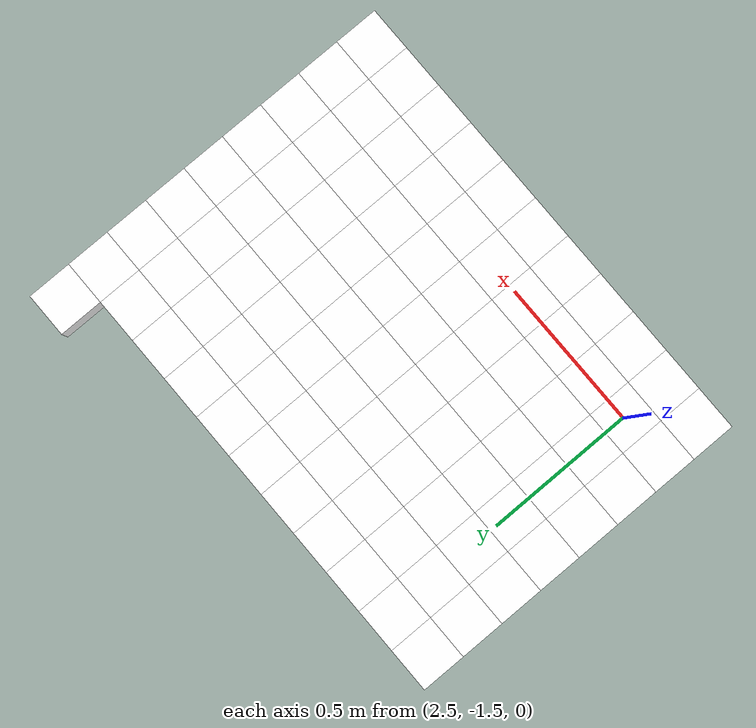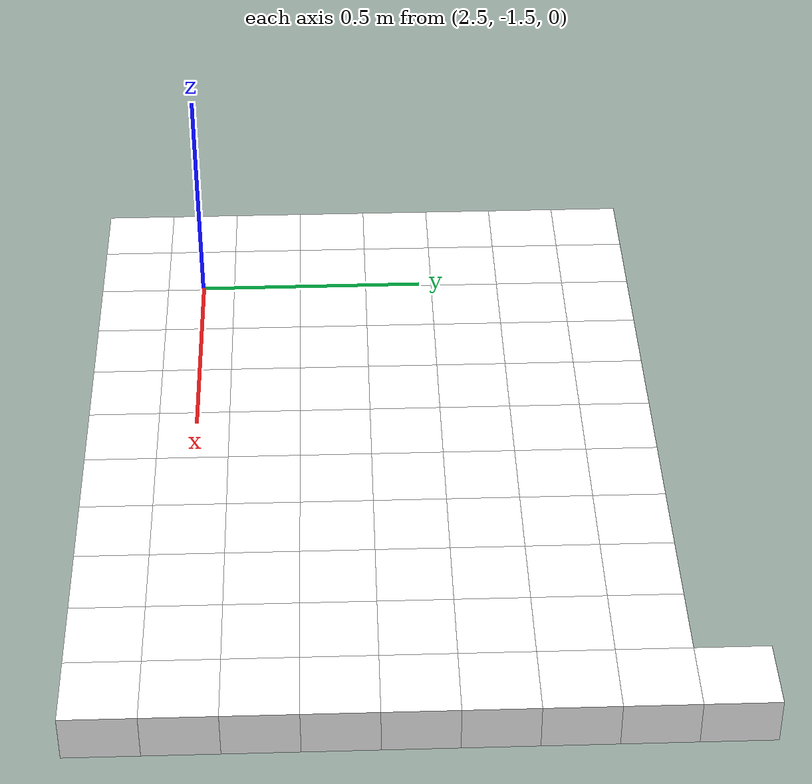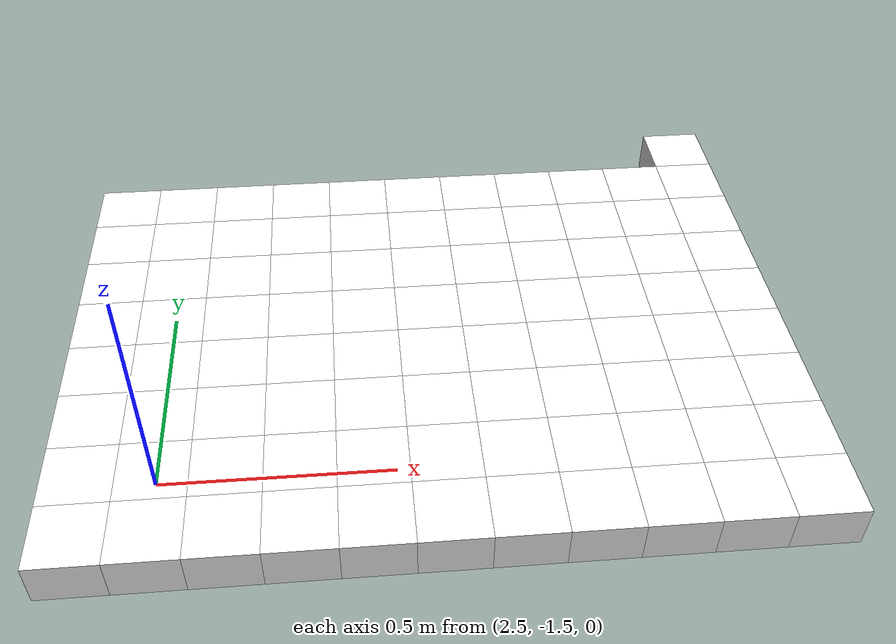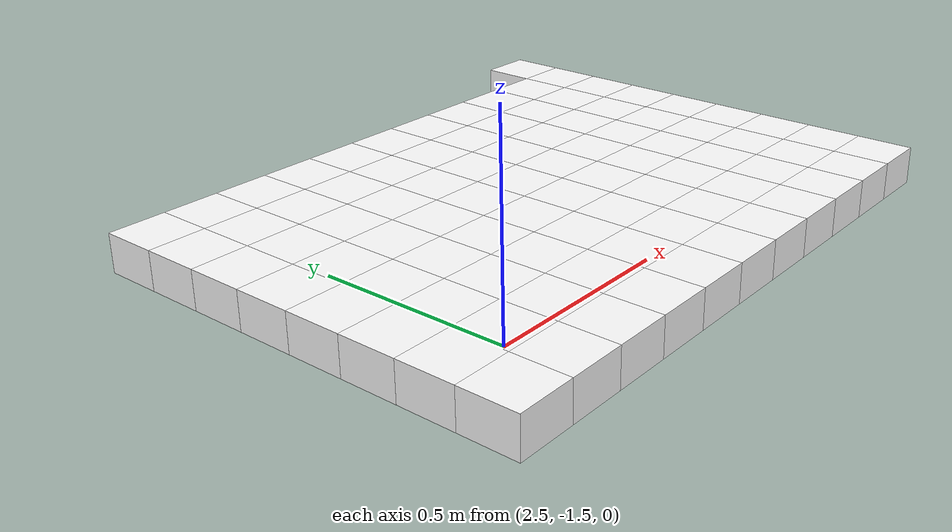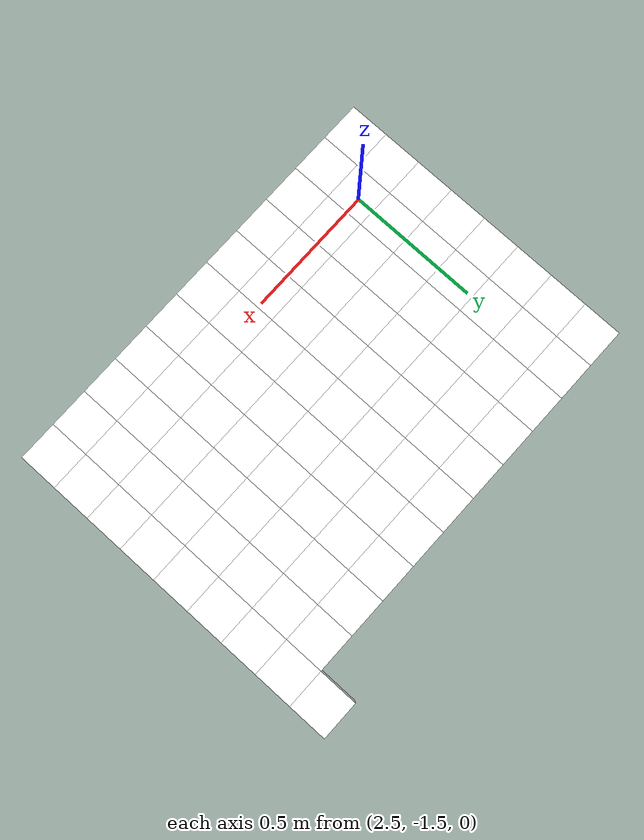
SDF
<sdf version="1.7">
 <world name="default">
  <include><uri>model://sun</uri></include>
  <model name="static_environment">
   <static>true</static>
   <link name="region_588">
    <pose>2.3498932063179314 -0.6003870599223852 0.0 0.0 0.0 4.7123</pose>
    <collision name="region_588_collision">
     <geometry><box><size>0.15 0.15 0.1</size></box></geometry>
     <surface><friction><ode><mu>1.0</mu><mu2>1.0</mu2></ode></friction></surface>
    </collision>
    <visual name="region_588_visual">
     <geometry><box><size>0.15 0.15 0.1</size></box></geometry>
     <material><ambient>1.0 1.0 1.0 1.0</ambient><diffuse>1.0 1.0 1.0 1.0</diffuse></material>
    </visual>
   </link>
   <link name="region_589">
    <pose>2.3498798592602457 -0.7503870593285719 0.0 0.0 0.0 4.7123</pose>
    <collision name="region_589_collision">
     <geometry><box><size>0.15 0.15 0.1</size></box></geometry>
     <surface><friction><ode><mu>1.0</mu><mu2>1.0</mu2></ode></friction></surface>
    </collision>
    <visual name="region_589_visual">
     <geometry><box><size>0.15 0.15 0.1</size></box></geometry>
     <material><ambient>1.0 1.0 1.0 1.0</ambient><diffuse>1.0 1.0 1.0 1.0</diffuse></material>
    </visual>
   </link>
   <link name="region_590">
    <pose>2.349866512202559 -0.9003870587347588 0.0 0.0 0.0 4.7123</pose>
    <collision name="region_590_collision">
     <geometry><box><size>0.15 0.15 0.1</size></box></geometry>
     <surface><friction><ode><mu>1.0</mu><mu2>1.0</mu2></ode></friction></surface>
    </collision>
    <visual name="region_590_visual">
     <geometry><box><size>0.15 0.15 0.1</size></box></geometry>
     <material><ambient>1.0 1.0 1.0 1.0</ambient><diffuse>1.0 1.0 1.0 1.0</diffuse></material>
    </visual>
   </link>
   <link name="region_591">
    <pose>2.3498531651448733 -1.0503870581409456 0.0 0.0 0.0 4.7123</pose>
    <collision name="region_591_collision">
     <geometry><box><size>0.15 0.15 0.1</size></box></geometry>
     <surface><friction><ode><mu>1.0</mu><mu2>1.0</mu2></ode></friction></surface>
    </collision>
    <visual name="region_591_visual">
     <geometry><box><size>0.15 0.15 0.1</size></box></geometry>
     <material><ambient>1.0 1.0 1.0 1.0</ambient><diffuse>1.0 1.0 1.0 1.0</diffuse></material>
    </visual>
   </link>
   <link name="region_592">
    <pose>2.3498398180871876 -1.200387057547132 0.0 0.0 0.0 4.7123</pose>
    <collision name="region_592_collision">
     <geometry><box><size>0.15 0.15 0.1</size></box></geometry>
     <surface><friction><ode><mu>1.0</mu><mu2>1.0</mu2></ode></friction></surface>
    </collision>
    <visual name="region_592_visual">
     <geometry><box><size>0.15 0.15 0.1</size></box></geometry>
     <material><ambient>1.0 1.0 1.0 1.0</ambient><diffuse>1.0 1.0 1.0 1.0</diffuse></material>
    </visual>
   </link>
   <link name="region_593">
    <pose>2.349826471029502 -1.350387056953319 0.0 0.0 0.0 4.7123</pose>
    <collision name="region_593_collision">
     <geometry><box><size>0.15 0.15 0.1</size></box></geometry>
     <surface><friction><ode><mu>1.0</mu><mu2>1.0</mu2></ode></friction></surface>
    </collision>
    <visual name="region_593_visual">
     <geometry><box><size>0.15 0.15 0.1</size></box></geometry>
     <material><ambient>1.0 1.0 1.0 1.0</ambient><diffuse>1.0 1.0 1.0 1.0</diffuse></material>
    </visual>
   </link>
   <link name="region_594">
    <pose>2.349813123971816 -1.5003870563595059 0.0 0.0 0.0 4.7123</pose>
    <collision name="region_594_collision">
     <geometry><box><size>0.15 0.15 0.1</size></box></geometry>
     <surface><friction><ode><mu>1.0</mu><mu2>1.0</mu2></ode></friction></surface>
    </collision>
    <visual name="region_594_visual">
     <geometry><box><size>0.15 0.15 0.1</size></box></geometry>
     <material><ambient>1.0 1.0 1.0 1.0</ambient><diffuse>1.0 1.0 1.0 1.0</diffuse></material>
    </visual>
   </link>
   <link name="region_595">
    <pose>2.3497997769141303 -1.6503870557656923 0.0 0.0 0.0 4.7123</pose>
    <collision name="region_595_collision">
     <geometry><box><size>0.15 0.15 0.1</size></box></geometry>
     <surface><friction><ode><mu>1.0</mu><mu2>1.0</mu2></ode></friction></surface>
    </collision>
    <visual name="region_595_visual">
     <geometry><box><size>0.15 0.15 0.1</size></box></geometry>
     <material><ambient>1.0 1.0 1.0 1.0</ambient><diffuse>1.0 1.0 1.0 1.0</diffuse></material>
    </visual>
   </link>
   <link name="region_608">
    <pose>2.499893205724118 -0.6004004069800709 0.0 0.0 0.0 4.7123</pose>
    <collision name="region_608_collision">
     <geometry><box><size>0.15 0.15 0.1</size></box></geometry>
     <surface><friction><ode><mu>1.0</mu><mu2>1.0</mu2></ode></friction></surface>
    </collision>
    <visual name="region_608_visual">
     <geometry><box><size>0.15 0.15 0.1</size></box></geometry>
     <material><ambient>1.0 1.0 1.0 1.0</ambient><diffuse>1.0 1.0 1.0 1.0</diffuse></material>
    </visual>
   </link>
   <link name="region_609">
    <pose>2.499879858666432 -0.7504004063862576 0.0 0.0 0.0 4.7123</pose>
    <collision name="region_609_collision">
     <geometry><box><size>0.15 0.15 0.1</size></box></geometry>
     <surface><friction><ode><mu>1.0</mu><mu2>1.0</mu2></ode></friction></surface>
    </collision>
    <visual name="region_609_visual">
     <geometry><box><size>0.15 0.15 0.1</size></box></geometry>
     <material><ambient>1.0 1.0 1.0 1.0</ambient><diffuse>1.0 1.0 1.0 1.0</diffuse></material>
    </visual>
   </link>
   <link name="region_610">
    <pose>2.4998665116087455 -0.9004004057924445 0.0 0.0 0.0 4.7123</pose>
    <collision name="region_610_collision">
     <geometry><box><size>0.15 0.15 0.1</size></box></geometry>
     <surface><friction><ode><mu>1.0</mu><mu2>1.0</mu2></ode></friction></surface>
    </collision>
    <visual name="region_610_visual">
     <geometry><box><size>0.15 0.15 0.1</size></box></geometry>
     <material><ambient>1.0 1.0 1.0 1.0</ambient><diffuse>1.0 1.0 1.0 1.0</diffuse></material>
    </visual>
   </link>
   <link name="region_611">
    <pose>2.4998531645510598 -1.0504004051986313 0.0 0.0 0.0 4.7123</pose>
    <collision name="region_611_collision">
     <geometry><box><size>0.15 0.15 0.1</size></box></geometry>
     <surface><friction><ode><mu>1.0</mu><mu2>1.0</mu2></ode></friction></surface>
    </collision>
    <visual name="region_611_visual">
     <geometry><box><size>0.15 0.15 0.1</size></box></geometry>
     <material><ambient>1.0 1.0 1.0 1.0</ambient><diffuse>1.0 1.0 1.0 1.0</diffuse></material>
    </visual>
   </link>
   <link name="region_612">
    <pose>2.499839817493374 -1.2004004046048178 0.0 0.0 0.0 4.7123</pose>
    <collision name="region_612_collision">
     <geometry><box><size>0.15 0.15 0.1</size></box></geometry>
     <surface><friction><ode><mu>1.0</mu><mu2>1.0</mu2></ode></friction></surface>
    </collision>
    <visual name="region_612_visual">
     <geometry><box><size>0.15 0.15 0.1</size></box></geometry>
     <material><ambient>1.0 1.0 1.0 1.0</ambient><diffuse>1.0 1.0 1.0 1.0</diffuse></material>
    </visual>
   </link>
   <link name="region_613">
    <pose>2.4998264704356883 -1.3504004040110047 0.0 0.0 0.0 4.7123</pose>
    <collision name="region_613_collision">
     <geometry><box><size>0.15 0.15 0.1</size></box></geometry>
     <surface><friction><ode><mu>1.0</mu><mu2>1.0</mu2></ode></friction></surface>
    </collision>
    <visual name="region_613_visual">
     <geometry><box><size>0.15 0.15 0.1</size></box></geometry>
     <material><ambient>1.0 1.0 1.0 1.0</ambient><diffuse>1.0 1.0 1.0 1.0</diffuse></material>
    </visual>
   </link>
   <link name="region_614">
    <pose>2.4998131233780025 -1.5004004034171916 0.0 0.0 0.0 4.7123</pose>
    <collision name="region_614_collision">
     <geometry><box><size>0.15 0.15 0.1</size></box></geometry>
     <surface><friction><ode><mu>1.0</mu><mu2>1.0</mu2></ode></friction></surface>
    </collision>
    <visual name="region_614_visual">
     <geometry><box><size>0.15 0.15 0.1</size></box></geometry>
     <material><ambient>1.0 1.0 1.0 1.0</ambient><diffuse>1.0 1.0 1.0 1.0</diffuse></material>
    </visual>
   </link>
   <link name="region_615">
    <pose>2.499799776320317 -1.650400402823378 0.0 0.0 0.0 4.7123</pose>
    <collision name="region_615_collision">
     <geometry><box><size>0.15 0.15 0.1</size></box></geometry>
     <surface><friction><ode><mu>1.0</mu><mu2>1.0</mu2></ode></friction></surface>
    </collision>
    <visual name="region_615_visual">
     <geometry><box><size>0.15 0.15 0.1</size></box></geometry>
     <material><ambient>1.0 1.0 1.0 1.0</ambient><diffuse>1.0 1.0 1.0 1.0</diffuse></material>
    </visual>
   </link>
   <link name="region_628">
    <pose>2.6498932051303052 -0.6004137540377569 0.0 0.0 0.0 4.7123</pose>
    <collision name="region_628_collision">
     <geometry><box><size>0.15 0.15 0.1</size></box></geometry>
     <surface><friction><ode><mu>1.0</mu><mu2>1.0</mu2></ode></friction></surface>
    </collision>
    <visual name="region_628_visual">
     <geometry><box><size>0.15 0.15 0.1</size></box></geometry>
     <material><ambient>1.0 1.0 1.0 1.0</ambient><diffuse>1.0 1.0 1.0 1.0</diffuse></material>
    </visual>
   </link>
   <link name="region_629">
    <pose>2.6498798580726195 -0.7504137534439436 0.0 0.0 0.0 4.7123</pose>
    <collision name="region_629_collision">
     <geometry><box><size>0.15 0.15 0.1</size></box></geometry>
     <surface><friction><ode><mu>1.0</mu><mu2>1.0</mu2></ode></friction></surface>
    </collision>
    <visual name="region_629_visual">
     <geometry><box><size>0.15 0.15 0.1</size></box></geometry>
     <material><ambient>1.0 1.0 1.0 1.0</ambient><diffuse>1.0 1.0 1.0 1.0</diffuse></material>
    </visual>
   </link>
   <link name="region_630">
    <pose>2.649866511014933 -0.9004137528501305 0.0 0.0 0.0 4.7123</pose>
    <collision name="region_630_collision">
     <geometry><box><size>0.15 0.15 0.1</size></box></geometry>
     <surface><friction><ode><mu>1.0</mu><mu2>1.0</mu2></ode></friction></surface>
    </collision>
    <visual name="region_630_visual">
     <geometry><box><size>0.15 0.15 0.1</size></box></geometry>
     <material><ambient>1.0 1.0 1.0 1.0</ambient><diffuse>1.0 1.0 1.0 1.0</diffuse></material>
    </visual>
   </link>
   <link name="region_631">
    <pose>2.649853163957247 -1.050413752256317 0.0 0.0 0.0 4.7123</pose>
    <collision name="region_631_collision">
     <geometry><box><size>0.15 0.15 0.1</size></box></geometry>
     <surface><friction><ode><mu>1.0</mu><mu2>1.0</mu2></ode></friction></surface>
    </collision>
    <visual name="region_631_visual">
     <geometry><box><size>0.15 0.15 0.1</size></box></geometry>
     <material><ambient>1.0 1.0 1.0 1.0</ambient><diffuse>1.0 1.0 1.0 1.0</diffuse></material>
    </visual>
   </link>
   <link name="region_632">
    <pose>2.6498398168995614 -1.200413751662504 0.0 0.0 0.0 4.7123</pose>
    <collision name="region_632_collision">
     <geometry><box><size>0.15 0.15 0.1</size></box></geometry>
     <surface><friction><ode><mu>1.0</mu><mu2>1.0</mu2></ode></friction></surface>
    </collision>
    <visual name="region_632_visual">
     <geometry><box><size>0.15 0.15 0.1</size></box></geometry>
     <material><ambient>1.0 1.0 1.0 1.0</ambient><diffuse>1.0 1.0 1.0 1.0</diffuse></material>
    </visual>
   </link>
   <link name="region_633">
    <pose>2.6498264698418756 -1.3504137510686904 0.0 0.0 0.0 4.7123</pose>
    <collision name="region_633_collision">
     <geometry><box><size>0.15 0.15 0.1</size></box></geometry>
     <surface><friction><ode><mu>1.0</mu><mu2>1.0</mu2></ode></friction></surface>
    </collision>
    <visual name="region_633_visual">
     <geometry><box><size>0.15 0.15 0.1</size></box></geometry>
     <material><ambient>1.0 1.0 1.0 1.0</ambient><diffuse>1.0 1.0 1.0 1.0</diffuse></material>
    </visual>
   </link>
   <link name="region_634">
    <pose>2.64981312278419 -1.5004137504748774 0.0 0.0 0.0 4.7123</pose>
    <collision name="region_634_collision">
     <geometry><box><size>0.15 0.15 0.1</size></box></geometry>
     <surface><friction><ode><mu>1.0</mu><mu2>1.0</mu2></ode></friction></surface>
    </collision>
    <visual name="region_634_visual">
     <geometry><box><size>0.15 0.15 0.1</size></box></geometry>
     <material><ambient>1.0 1.0 1.0 1.0</ambient><diffuse>1.0 1.0 1.0 1.0</diffuse></material>
    </visual>
   </link>
   <link name="region_635">
    <pose>2.649799775726504 -1.6504137498810638 0.0 0.0 0.0 4.7123</pose>
    <collision name="region_635_collision">
     <geometry><box><size>0.15 0.15 0.1</size></box></geometry>
     <surface><friction><ode><mu>1.0</mu><mu2>1.0</mu2></ode></friction></surface>
    </collision>
    <visual name="region_635_visual">
     <geometry><box><size>0.15 0.15 0.1</size></box></geometry>
     <material><ambient>1.0 1.0 1.0 1.0</ambient><diffuse>1.0 1.0 1.0 1.0</diffuse></material>
    </visual>
   </link>
   <link name="region_648">
    <pose>2.7998932045364926 -0.6004271010954426 0.0 0.0 0.0 4.7123</pose>
    <collision name="region_648_collision">
     <geometry><box><size>0.15 0.15 0.1</size></box></geometry>
     <surface><friction><ode><mu>1.0</mu><mu2>1.0</mu2></ode></friction></surface>
    </collision>
    <visual name="region_648_visual">
     <geometry><box><size>0.15 0.15 0.1</size></box></geometry>
     <material><ambient>1.0 1.0 1.0 1.0</ambient><diffuse>1.0 1.0 1.0 1.0</diffuse></material>
    </visual>
   </link>
   <link name="region_649">
    <pose>2.799879857478807 -0.7504271005016293 0.0 0.0 0.0 4.7123</pose>
    <collision name="region_649_collision">
     <geometry><box><size>0.15 0.15 0.1</size></box></geometry>
     <surface><friction><ode><mu>1.0</mu><mu2>1.0</mu2></ode></friction></surface>
    </collision>
    <visual name="region_649_visual">
     <geometry><box><size>0.15 0.15 0.1</size></box></geometry>
     <material><ambient>1.0 1.0 1.0 1.0</ambient><diffuse>1.0 1.0 1.0 1.0</diffuse></material>
    </visual>
   </link>
   <link name="region_650">
    <pose>2.7998665104211202 -0.9004270999078162 0.0 0.0 0.0 4.7123</pose>
    <collision name="region_650_collision">
     <geometry><box><size>0.15 0.15 0.1</size></box></geometry>
     <surface><friction><ode><mu>1.0</mu><mu2>1.0</mu2></ode></friction></surface>
    </collision>
    <visual name="region_650_visual">
     <geometry><box><size>0.15 0.15 0.1</size></box></geometry>
     <material><ambient>1.0 1.0 1.0 1.0</ambient><diffuse>1.0 1.0 1.0 1.0</diffuse></material>
    </visual>
   </link>
   <link name="region_651">
    <pose>2.7998531633634345 -1.0504270993140028 0.0 0.0 0.0 4.7123</pose>
    <collision name="region_651_collision">
     <geometry><box><size>0.15 0.15 0.1</size></box></geometry>
     <surface><friction><ode><mu>1.0</mu><mu2>1.0</mu2></ode></friction></surface>
    </collision>
    <visual name="region_651_visual">
     <geometry><box><size>0.15 0.15 0.1</size></box></geometry>
     <material><ambient>1.0 1.0 1.0 1.0</ambient><diffuse>1.0 1.0 1.0 1.0</diffuse></material>
    </visual>
   </link>
   <link name="region_652">
    <pose>2.7998398163057487 -1.2004270987201897 0.0 0.0 0.0 4.7123</pose>
    <collision name="region_652_collision">
     <geometry><box><size>0.15 0.15 0.1</size></box></geometry>
     <surface><friction><ode><mu>1.0</mu><mu2>1.0</mu2></ode></friction></surface>
    </collision>
    <visual name="region_652_visual">
     <geometry><box><size>0.15 0.15 0.1</size></box></geometry>
     <material><ambient>1.0 1.0 1.0 1.0</ambient><diffuse>1.0 1.0 1.0 1.0</diffuse></material>
    </visual>
   </link>
   <link name="region_653">
    <pose>2.799826469248063 -1.3504270981263762 0.0 0.0 0.0 4.7123</pose>
    <collision name="region_653_collision">
     <geometry><box><size>0.15 0.15 0.1</size></box></geometry>
     <surface><friction><ode><mu>1.0</mu><mu2>1.0</mu2></ode></friction></surface>
    </collision>
    <visual name="region_653_visual">
     <geometry><box><size>0.15 0.15 0.1</size></box></geometry>
     <material><ambient>1.0 1.0 1.0 1.0</ambient><diffuse>1.0 1.0 1.0 1.0</diffuse></material>
    </visual>
   </link>
   <link name="region_654">
    <pose>2.7998131221903773 -1.5004270975325635 0.0 0.0 0.0 4.7123</pose>
    <collision name="region_654_collision">
     <geometry><box><size>0.15 0.15 0.1</size></box></geometry>
     <surface><friction><ode><mu>1.0</mu><mu2>1.0</mu2></ode></friction></surface>
    </collision>
    <visual name="region_654_visual">
     <geometry><box><size>0.15 0.15 0.1</size></box></geometry>
     <material><ambient>1.0 1.0 1.0 1.0</ambient><diffuse>1.0 1.0 1.0 1.0</diffuse></material>
    </visual>
   </link>
   <link name="region_655">
    <pose>2.7997997751326915 -1.65042709693875 0.0 0.0 0.0 4.7123</pose>
    <collision name="region_655_collision">
     <geometry><box><size>0.15 0.15 0.1</size></box></geometry>
     <surface><friction><ode><mu>1.0</mu><mu2>1.0</mu2></ode></friction></surface>
    </collision>
    <visual name="region_655_visual">
     <geometry><box><size>0.15 0.15 0.1</size></box></geometry>
     <material><ambient>1.0 1.0 1.0 1.0</ambient><diffuse>1.0 1.0 1.0 1.0</diffuse></material>
    </visual>
   </link>
   <link name="region_668">
    <pose>2.94989320394268 -0.6004404481531286 0.0 0.0 0.0 4.7123</pose>
    <collision name="region_668_collision">
     <geometry><box><size>0.15 0.15 0.1</size></box></geometry>
     <surface><friction><ode><mu>1.0</mu><mu2>1.0</mu2></ode></friction></surface>
    </collision>
    <visual name="region_668_visual">
     <geometry><box><size>0.15 0.15 0.1</size></box></geometry>
     <material><ambient>1.0 1.0 1.0 1.0</ambient><diffuse>1.0 1.0 1.0 1.0</diffuse></material>
    </visual>
   </link>
   <link name="region_669">
    <pose>2.949879856884994 -0.7504404475593153 0.0 0.0 0.0 4.7123</pose>
    <collision name="region_669_collision">
     <geometry><box><size>0.15 0.15 0.1</size></box></geometry>
     <surface><friction><ode><mu>1.0</mu><mu2>1.0</mu2></ode></friction></surface>
    </collision>
    <visual name="region_669_visual">
     <geometry><box><size>0.15 0.15 0.1</size></box></geometry>
     <material><ambient>1.0 1.0 1.0 1.0</ambient><diffuse>1.0 1.0 1.0 1.0</diffuse></material>
    </visual>
   </link>
   <link name="region_670">
    <pose>2.9498665098273076 -0.9004404469655022 0.0 0.0 0.0 4.7123</pose>
    <collision name="region_670_collision">
     <geometry><box><size>0.15 0.15 0.1</size></box></geometry>
     <surface><friction><ode><mu>1.0</mu><mu2>1.0</mu2></ode></friction></surface>
    </collision>
    <visual name="region_670_visual">
     <geometry><box><size>0.15 0.15 0.1</size></box></geometry>
     <material><ambient>1.0 1.0 1.0 1.0</ambient><diffuse>1.0 1.0 1.0 1.0</diffuse></material>
    </visual>
   </link>
   <link name="region_671">
    <pose>2.949853162769622 -1.050440446371689 0.0 0.0 0.0 4.7123</pose>
    <collision name="region_671_collision">
     <geometry><box><size>0.15 0.15 0.1</size></box></geometry>
     <surface><friction><ode><mu>1.0</mu><mu2>1.0</mu2></ode></friction></surface>
    </collision>
    <visual name="region_671_visual">
     <geometry><box><size>0.15 0.15 0.1</size></box></geometry>
     <material><ambient>1.0 1.0 1.0 1.0</ambient><diffuse>1.0 1.0 1.0 1.0</diffuse></material>
    </visual>
   </link>
   <link name="region_672">
    <pose>2.949839815711936 -1.2004404457778755 0.0 0.0 0.0 4.7123</pose>
    <collision name="region_672_collision">
     <geometry><box><size>0.15 0.15 0.1</size></box></geometry>
     <surface><friction><ode><mu>1.0</mu><mu2>1.0</mu2></ode></friction></surface>
    </collision>
    <visual name="region_672_visual">
     <geometry><box><size>0.15 0.15 0.1</size></box></geometry>
     <material><ambient>1.0 1.0 1.0 1.0</ambient><diffuse>1.0 1.0 1.0 1.0</diffuse></material>
    </visual>
   </link>
   <link name="region_673">
    <pose>2.9498264686542504 -1.3504404451840624 0.0 0.0 0.0 4.7123</pose>
    <collision name="region_673_collision">
     <geometry><box><size>0.15 0.15 0.1</size></box></geometry>
     <surface><friction><ode><mu>1.0</mu><mu2>1.0</mu2></ode></friction></surface>
    </collision>
    <visual name="region_673_visual">
     <geometry><box><size>0.15 0.15 0.1</size></box></geometry>
     <material><ambient>1.0 1.0 1.0 1.0</ambient><diffuse>1.0 1.0 1.0 1.0</diffuse></material>
    </visual>
   </link>
   <link name="region_674">
    <pose>2.9498131215965646 -1.5004404445902493 0.0 0.0 0.0 4.7123</pose>
    <collision name="region_674_collision">
     <geometry><box><size>0.15 0.15 0.1</size></box></geometry>
     <surface><friction><ode><mu>1.0</mu><mu2>1.0</mu2></ode></friction></surface>
    </collision>
    <visual name="region_674_visual">
     <geometry><box><size>0.15 0.15 0.1</size></box></geometry>
     <material><ambient>1.0 1.0 1.0 1.0</ambient><diffuse>1.0 1.0 1.0 1.0</diffuse></material>
    </visual>
   </link>
   <link name="region_675">
    <pose>2.949799774538879 -1.6504404439964357 0.0 0.0 0.0 4.7123</pose>
    <collision name="region_675_collision">
     <geometry><box><size>0.15 0.15 0.1</size></box></geometry>
     <surface><friction><ode><mu>1.0</mu><mu2>1.0</mu2></ode></friction></surface>
    </collision>
    <visual name="region_675_visual">
     <geometry><box><size>0.15 0.15 0.1</size></box></geometry>
     <material><ambient>1.0 1.0 1.0 1.0</ambient><diffuse>1.0 1.0 1.0 1.0</diffuse></material>
    </visual>
   </link>
   <link name="region_688">
    <pose>3.0998932033488673 -0.6004537952108145 0.0 0.0 0.0 4.7123</pose>
    <collision name="region_688_collision">
     <geometry><box><size>0.15 0.15 0.1</size></box></geometry>
     <surface><friction><ode><mu>1.0</mu><mu2>1.0</mu2></ode></friction></surface>
    </collision>
    <visual name="region_688_visual">
     <geometry><box><size>0.15 0.15 0.1</size></box></geometry>
     <material><ambient>1.0 1.0 1.0 1.0</ambient><diffuse>1.0 1.0 1.0 1.0</diffuse></material>
    </visual>
   </link>
   <link name="region_689">
    <pose>3.0998798562911816 -0.7504537946170012 0.0 0.0 0.0 4.7123</pose>
    <collision name="region_689_collision">
     <geometry><box><size>0.15 0.15 0.1</size></box></geometry>
     <surface><friction><ode><mu>1.0</mu><mu2>1.0</mu2></ode></friction></surface>
    </collision>
    <visual name="region_689_visual">
     <geometry><box><size>0.15 0.15 0.1</size></box></geometry>
     <material><ambient>1.0 1.0 1.0 1.0</ambient><diffuse>1.0 1.0 1.0 1.0</diffuse></material>
    </visual>
   </link>
   <link name="region_690">
    <pose>3.099866509233495 -0.9004537940231881 0.0 0.0 0.0 4.7123</pose>
    <collision name="region_690_collision">
     <geometry><box><size>0.15 0.15 0.1</size></box></geometry>
     <surface><friction><ode><mu>1.0</mu><mu2>1.0</mu2></ode></friction></surface>
    </collision>
    <visual name="region_690_visual">
     <geometry><box><size>0.15 0.15 0.1</size></box></geometry>
     <material><ambient>1.0 1.0 1.0 1.0</ambient><diffuse>1.0 1.0 1.0 1.0</diffuse></material>
    </visual>
   </link>
   <link name="region_691">
    <pose>3.099853162175809 -1.0504537934293747 0.0 0.0 0.0 4.7123</pose>
    <collision name="region_691_collision">
     <geometry><box><size>0.15 0.15 0.1</size></box></geometry>
     <surface><friction><ode><mu>1.0</mu><mu2>1.0</mu2></ode></friction></surface>
    </collision>
    <visual name="region_691_visual">
     <geometry><box><size>0.15 0.15 0.1</size></box></geometry>
     <material><ambient>1.0 1.0 1.0 1.0</ambient><diffuse>1.0 1.0 1.0 1.0</diffuse></material>
    </visual>
   </link>
   <link name="region_692">
    <pose>3.0998398151181235 -1.2004537928355616 0.0 0.0 0.0 4.7123</pose>
    <collision name="region_692_collision">
     <geometry><box><size>0.15 0.15 0.1</size></box></geometry>
     <surface><friction><ode><mu>1.0</mu><mu2>1.0</mu2></ode></friction></surface>
    </collision>
    <visual name="region_692_visual">
     <geometry><box><size>0.15 0.15 0.1</size></box></geometry>
     <material><ambient>1.0 1.0 1.0 1.0</ambient><diffuse>1.0 1.0 1.0 1.0</diffuse></material>
    </visual>
   </link>
   <link name="region_693">
    <pose>3.0998264680604377 -1.350453792241748 0.0 0.0 0.0 4.7123</pose>
    <collision name="region_693_collision">
     <geometry><box><size>0.15 0.15 0.1</size></box></geometry>
     <surface><friction><ode><mu>1.0</mu><mu2>1.0</mu2></ode></friction></surface>
    </collision>
    <visual name="region_693_visual">
     <geometry><box><size>0.15 0.15 0.1</size></box></geometry>
     <material><ambient>1.0 1.0 1.0 1.0</ambient><diffuse>1.0 1.0 1.0 1.0</diffuse></material>
    </visual>
   </link>
   <link name="region_694">
    <pose>3.099813121002752 -1.500453791647935 0.0 0.0 0.0 4.7123</pose>
    <collision name="region_694_collision">
     <geometry><box><size>0.15 0.15 0.1</size></box></geometry>
     <surface><friction><ode><mu>1.0</mu><mu2>1.0</mu2></ode></friction></surface>
    </collision>
    <visual name="region_694_visual">
     <geometry><box><size>0.15 0.15 0.1</size></box></geometry>
     <material><ambient>1.0 1.0 1.0 1.0</ambient><diffuse>1.0 1.0 1.0 1.0</diffuse></material>
    </visual>
   </link>
   <link name="region_695">
    <pose>3.0997997739450662 -1.6504537910541215 0.0 0.0 0.0 4.7123</pose>
    <collision name="region_695_collision">
     <geometry><box><size>0.15 0.15 0.1</size></box></geometry>
     <surface><friction><ode><mu>1.0</mu><mu2>1.0</mu2></ode></friction></surface>
    </collision>
    <visual name="region_695_visual">
     <geometry><box><size>0.15 0.15 0.1</size></box></geometry>
     <material><ambient>1.0 1.0 1.0 1.0</ambient><diffuse>1.0 1.0 1.0 1.0</diffuse></material>
    </visual>
   </link>
   <link name="region_708">
    <pose>3.249893202755054 -0.6004671422685003 0.0 0.0 0.0 4.7123</pose>
    <collision name="region_708_collision">
     <geometry><box><size>0.15 0.15 0.1</size></box></geometry>
     <surface><friction><ode><mu>1.0</mu><mu2>1.0</mu2></ode></friction></surface>
    </collision>
    <visual name="region_708_visual">
     <geometry><box><size>0.15 0.15 0.1</size></box></geometry>
     <material><ambient>1.0 1.0 1.0 1.0</ambient><diffuse>1.0 1.0 1.0 1.0</diffuse></material>
    </visual>
   </link>
   <link name="region_709">
    <pose>3.249879855697368 -0.750467141674687 0.0 0.0 0.0 4.7123</pose>
    <collision name="region_709_collision">
     <geometry><box><size>0.15 0.15 0.1</size></box></geometry>
     <surface><friction><ode><mu>1.0</mu><mu2>1.0</mu2></ode></friction></surface>
    </collision>
    <visual name="region_709_visual">
     <geometry><box><size>0.15 0.15 0.1</size></box></geometry>
     <material><ambient>1.0 1.0 1.0 1.0</ambient><diffuse>1.0 1.0 1.0 1.0</diffuse></material>
    </visual>
   </link>
   <link name="region_710">
    <pose>3.2498665086396814 -0.9004671410808739 0.0 0.0 0.0 4.7123</pose>
    <collision name="region_710_collision">
     <geometry><box><size>0.15 0.15 0.1</size></box></geometry>
     <surface><friction><ode><mu>1.0</mu><mu2>1.0</mu2></ode></friction></surface>
    </collision>
    <visual name="region_710_visual">
     <geometry><box><size>0.15 0.15 0.1</size></box></geometry>
     <material><ambient>1.0 1.0 1.0 1.0</ambient><diffuse>1.0 1.0 1.0 1.0</diffuse></material>
    </visual>
   </link>
   <link name="region_711">
    <pose>3.2498531615819957 -1.0504671404870605 0.0 0.0 0.0 4.7123</pose>
    <collision name="region_711_collision">
     <geometry><box><size>0.15 0.15 0.1</size></box></geometry>
     <surface><friction><ode><mu>1.0</mu><mu2>1.0</mu2></ode></friction></surface>
    </collision>
    <visual name="region_711_visual">
     <geometry><box><size>0.15 0.15 0.1</size></box></geometry>
     <material><ambient>1.0 1.0 1.0 1.0</ambient><diffuse>1.0 1.0 1.0 1.0</diffuse></material>
    </visual>
   </link>
   <link name="region_712">
    <pose>3.24983981452431 -1.2004671398932474 0.0 0.0 0.0 4.7123</pose>
    <collision name="region_712_collision">
     <geometry><box><size>0.15 0.15 0.1</size></box></geometry>
     <surface><friction><ode><mu>1.0</mu><mu2>1.0</mu2></ode></friction></surface>
    </collision>
    <visual name="region_712_visual">
     <geometry><box><size>0.15 0.15 0.1</size></box></geometry>
     <material><ambient>1.0 1.0 1.0 1.0</ambient><diffuse>1.0 1.0 1.0 1.0</diffuse></material>
    </visual>
   </link>
   <link name="region_713">
    <pose>3.249826467466624 -1.3504671392994338 0.0 0.0 0.0 4.7123</pose>
    <collision name="region_713_collision">
     <geometry><box><size>0.15 0.15 0.1</size></box></geometry>
     <surface><friction><ode><mu>1.0</mu><mu2>1.0</mu2></ode></friction></surface>
    </collision>
    <visual name="region_713_visual">
     <geometry><box><size>0.15 0.15 0.1</size></box></geometry>
     <material><ambient>1.0 1.0 1.0 1.0</ambient><diffuse>1.0 1.0 1.0 1.0</diffuse></material>
    </visual>
   </link>
   <link name="region_714">
    <pose>3.2498131204089384 -1.5004671387056212 0.0 0.0 0.0 4.7123</pose>
    <collision name="region_714_collision">
     <geometry><box><size>0.15 0.15 0.1</size></box></geometry>
     <surface><friction><ode><mu>1.0</mu><mu2>1.0</mu2></ode></friction></surface>
    </collision>
    <visual name="region_714_visual">
     <geometry><box><size>0.15 0.15 0.1</size></box></geometry>
     <material><ambient>1.0 1.0 1.0 1.0</ambient><diffuse>1.0 1.0 1.0 1.0</diffuse></material>
    </visual>
   </link>
   <link name="region_715">
    <pose>3.2497997733512527 -1.6504671381118077 0.0 0.0 0.0 4.7123</pose>
    <collision name="region_715_collision">
     <geometry><box><size>0.15 0.15 0.1</size></box></geometry>
     <surface><friction><ode><mu>1.0</mu><mu2>1.0</mu2></ode></friction></surface>
    </collision>
    <visual name="region_715_visual">
     <geometry><box><size>0.15 0.15 0.1</size></box></geometry>
     <material><ambient>1.0 1.0 1.0 1.0</ambient><diffuse>1.0 1.0 1.0 1.0</diffuse></material>
    </visual>
   </link>
   <link name="region_728">
    <pose>3.399893202161241 -0.6004804893261863 0.0 0.0 0.0 4.7123</pose>
    <collision name="region_728_collision">
     <geometry><box><size>0.15 0.15 0.1</size></box></geometry>
     <surface><friction><ode><mu>1.0</mu><mu2>1.0</mu2></ode></friction></surface>
    </collision>
    <visual name="region_728_visual">
     <geometry><box><size>0.15 0.15 0.1</size></box></geometry>
     <material><ambient>1.0 1.0 1.0 1.0</ambient><diffuse>1.0 1.0 1.0 1.0</diffuse></material>
    </visual>
   </link>
   <link name="region_729">
    <pose>3.3998798551035554 -0.7504804887323729 0.0 0.0 0.0 4.7123</pose>
    <collision name="region_729_collision">
     <geometry><box><size>0.15 0.15 0.1</size></box></geometry>
     <surface><friction><ode><mu>1.0</mu><mu2>1.0</mu2></ode></friction></surface>
    </collision>
    <visual name="region_729_visual">
     <geometry><box><size>0.15 0.15 0.1</size></box></geometry>
     <material><ambient>1.0 1.0 1.0 1.0</ambient><diffuse>1.0 1.0 1.0 1.0</diffuse></material>
    </visual>
   </link>
   <link name="region_730">
    <pose>3.3998665080458688 -0.9004804881385599 0.0 0.0 0.0 4.7123</pose>
    <collision name="region_730_collision">
     <geometry><box><size>0.15 0.15 0.1</size></box></geometry>
     <surface><friction><ode><mu>1.0</mu><mu2>1.0</mu2></ode></friction></surface>
    </collision>
    <visual name="region_730_visual">
     <geometry><box><size>0.15 0.15 0.1</size></box></geometry>
     <material><ambient>1.0 1.0 1.0 1.0</ambient><diffuse>1.0 1.0 1.0 1.0</diffuse></material>
    </visual>
   </link>
   <link name="region_731">
    <pose>3.399853160988183 -1.0504804875447467 0.0 0.0 0.0 4.7123</pose>
    <collision name="region_731_collision">
     <geometry><box><size>0.15 0.15 0.1</size></box></geometry>
     <surface><friction><ode><mu>1.0</mu><mu2>1.0</mu2></ode></friction></surface>
    </collision>
    <visual name="region_731_visual">
     <geometry><box><size>0.15 0.15 0.1</size></box></geometry>
     <material><ambient>1.0 1.0 1.0 1.0</ambient><diffuse>1.0 1.0 1.0 1.0</diffuse></material>
    </visual>
   </link>
   <link name="region_732">
    <pose>3.3998398139304973 -1.2004804869509331 0.0 0.0 0.0 4.7123</pose>
    <collision name="region_732_collision">
     <geometry><box><size>0.15 0.15 0.1</size></box></geometry>
     <surface><friction><ode><mu>1.0</mu><mu2>1.0</mu2></ode></friction></surface>
    </collision>
    <visual name="region_732_visual">
     <geometry><box><size>0.15 0.15 0.1</size></box></geometry>
     <material><ambient>1.0 1.0 1.0 1.0</ambient><diffuse>1.0 1.0 1.0 1.0</diffuse></material>
    </visual>
   </link>
   <link name="region_733">
    <pose>3.3998264668728115 -1.35048048635712 0.0 0.0 0.0 4.7123</pose>
    <collision name="region_733_collision">
     <geometry><box><size>0.15 0.15 0.1</size></box></geometry>
     <surface><friction><ode><mu>1.0</mu><mu2>1.0</mu2></ode></friction></surface>
    </collision>
    <visual name="region_733_visual">
     <geometry><box><size>0.15 0.15 0.1</size></box></geometry>
     <material><ambient>1.0 1.0 1.0 1.0</ambient><diffuse>1.0 1.0 1.0 1.0</diffuse></material>
    </visual>
   </link>
   <link name="region_734">
    <pose>3.399813119815126 -1.500480485763307 0.0 0.0 0.0 4.7123</pose>
    <collision name="region_734_collision">
     <geometry><box><size>0.15 0.15 0.1</size></box></geometry>
     <surface><friction><ode><mu>1.0</mu><mu2>1.0</mu2></ode></friction></surface>
    </collision>
    <visual name="region_734_visual">
     <geometry><box><size>0.15 0.15 0.1</size></box></geometry>
     <material><ambient>1.0 1.0 1.0 1.0</ambient><diffuse>1.0 1.0 1.0 1.0</diffuse></material>
    </visual>
   </link>
   <link name="region_735">
    <pose>3.39979977275744 -1.6504804851694934 0.0 0.0 0.0 4.7123</pose>
    <collision name="region_735_collision">
     <geometry><box><size>0.15 0.15 0.1</size></box></geometry>
     <surface><friction><ode><mu>1.0</mu><mu2>1.0</mu2></ode></friction></surface>
    </collision>
    <visual name="region_735_visual">
     <geometry><box><size>0.15 0.15 0.1</size></box></geometry>
     <material><ambient>1.0 1.0 1.0 1.0</ambient><diffuse>1.0 1.0 1.0 1.0</diffuse></material>
    </visual>
   </link>
   <link name="region_748">
    <pose>3.5498932015674285 -0.600493836383872 0.0 0.0 0.0 4.7123</pose>
    <collision name="region_748_collision">
     <geometry><box><size>0.15 0.15 0.1</size></box></geometry>
     <surface><friction><ode><mu>1.0</mu><mu2>1.0</mu2></ode></friction></surface>
    </collision>
    <visual name="region_748_visual">
     <geometry><box><size>0.15 0.15 0.1</size></box></geometry>
     <material><ambient>1.0 1.0 1.0 1.0</ambient><diffuse>1.0 1.0 1.0 1.0</diffuse></material>
    </visual>
   </link>
   <link name="region_749">
    <pose>3.5498798545097427 -0.7504938357900587 0.0 0.0 0.0 4.7123</pose>
    <collision name="region_749_collision">
     <geometry><box><size>0.15 0.15 0.1</size></box></geometry>
     <surface><friction><ode><mu>1.0</mu><mu2>1.0</mu2></ode></friction></surface>
    </collision>
    <visual name="region_749_visual">
     <geometry><box><size>0.15 0.15 0.1</size></box></geometry>
     <material><ambient>1.0 1.0 1.0 1.0</ambient><diffuse>1.0 1.0 1.0 1.0</diffuse></material>
    </visual>
   </link>
   <link name="region_750">
    <pose>3.549866507452056 -0.9004938351962456 0.0 0.0 0.0 4.7123</pose>
    <collision name="region_750_collision">
     <geometry><box><size>0.15 0.15 0.1</size></box></geometry>
     <surface><friction><ode><mu>1.0</mu><mu2>1.0</mu2></ode></friction></surface>
    </collision>
    <visual name="region_750_visual">
     <geometry><box><size>0.15 0.15 0.1</size></box></geometry>
     <material><ambient>1.0 1.0 1.0 1.0</ambient><diffuse>1.0 1.0 1.0 1.0</diffuse></material>
    </visual>
   </link>
   <link name="region_751">
    <pose>3.5498531603943704 -1.0504938346024324 0.0 0.0 0.0 4.7123</pose>
    <collision name="region_751_collision">
     <geometry><box><size>0.15 0.15 0.1</size></box></geometry>
     <surface><friction><ode><mu>1.0</mu><mu2>1.0</mu2></ode></friction></surface>
    </collision>
    <visual name="region_751_visual">
     <geometry><box><size>0.15 0.15 0.1</size></box></geometry>
     <material><ambient>1.0 1.0 1.0 1.0</ambient><diffuse>1.0 1.0 1.0 1.0</diffuse></material>
    </visual>
   </link>
   <link name="region_752">
    <pose>3.5498398133366846 -1.2004938340086189 0.0 0.0 0.0 4.7123</pose>
    <collision name="region_752_collision">
     <geometry><box><size>0.15 0.15 0.1</size></box></geometry>
     <surface><friction><ode><mu>1.0</mu><mu2>1.0</mu2></ode></friction></surface>
    </collision>
    <visual name="region_752_visual">
     <geometry><box><size>0.15 0.15 0.1</size></box></geometry>
     <material><ambient>1.0 1.0 1.0 1.0</ambient><diffuse>1.0 1.0 1.0 1.0</diffuse></material>
    </visual>
   </link>
   <link name="region_753">
    <pose>3.549826466278999 -1.3504938334148058 0.0 0.0 0.0 4.7123</pose>
    <collision name="region_753_collision">
     <geometry><box><size>0.15 0.15 0.1</size></box></geometry>
     <surface><friction><ode><mu>1.0</mu><mu2>1.0</mu2></ode></friction></surface>
    </collision>
    <visual name="region_753_visual">
     <geometry><box><size>0.15 0.15 0.1</size></box></geometry>
     <material><ambient>1.0 1.0 1.0 1.0</ambient><diffuse>1.0 1.0 1.0 1.0</diffuse></material>
    </visual>
   </link>
   <link name="region_754">
    <pose>3.549813119221313 -1.5004938328209927 0.0 0.0 0.0 4.7123</pose>
    <collision name="region_754_collision">
     <geometry><box><size>0.15 0.15 0.1</size></box></geometry>
     <surface><friction><ode><mu>1.0</mu><mu2>1.0</mu2></ode></friction></surface>
    </collision>
    <visual name="region_754_visual">
     <geometry><box><size>0.15 0.15 0.1</size></box></geometry>
     <material><ambient>1.0 1.0 1.0 1.0</ambient><diffuse>1.0 1.0 1.0 1.0</diffuse></material>
    </visual>
   </link>
   <link name="region_755">
    <pose>3.5497997721636274 -1.6504938322271792 0.0 0.0 0.0 4.7123</pose>
    <collision name="region_755_collision">
     <geometry><box><size>0.15 0.15 0.1</size></box></geometry>
     <surface><friction><ode><mu>1.0</mu><mu2>1.0</mu2></ode></friction></surface>
    </collision>
    <visual name="region_755_visual">
     <geometry><box><size>0.15 0.15 0.1</size></box></geometry>
     <material><ambient>1.0 1.0 1.0 1.0</ambient><diffuse>1.0 1.0 1.0 1.0</diffuse></material>
    </visual>
   </link>
   <link name="region_768">
    <pose>3.699893200973616 -0.600507183441558 0.0 0.0 0.0 4.7123</pose>
    <collision name="region_768_collision">
     <geometry><box><size>0.15 0.15 0.1</size></box></geometry>
     <surface><friction><ode><mu>1.0</mu><mu2>1.0</mu2></ode></friction></surface>
    </collision>
    <visual name="region_768_visual">
     <geometry><box><size>0.15 0.15 0.1</size></box></geometry>
     <material><ambient>1.0 1.0 1.0 1.0</ambient><diffuse>1.0 1.0 1.0 1.0</diffuse></material>
    </visual>
   </link>
   <link name="region_769">
    <pose>3.69987985391593 -0.7505071828477446 0.0 0.0 0.0 4.7123</pose>
    <collision name="region_769_collision">
     <geometry><box><size>0.15 0.15 0.1</size></box></geometry>
     <surface><friction><ode><mu>1.0</mu><mu2>1.0</mu2></ode></friction></surface>
    </collision>
    <visual name="region_769_visual">
     <geometry><box><size>0.15 0.15 0.1</size></box></geometry>
     <material><ambient>1.0 1.0 1.0 1.0</ambient><diffuse>1.0 1.0 1.0 1.0</diffuse></material>
    </visual>
   </link>
   <link name="region_770">
    <pose>3.6998665068582435 -0.9005071822539316 0.0 0.0 0.0 4.7123</pose>
    <collision name="region_770_collision">
     <geometry><box><size>0.15 0.15 0.1</size></box></geometry>
     <surface><friction><ode><mu>1.0</mu><mu2>1.0</mu2></ode></friction></surface>
    </collision>
    <visual name="region_770_visual">
     <geometry><box><size>0.15 0.15 0.1</size></box></geometry>
     <material><ambient>1.0 1.0 1.0 1.0</ambient><diffuse>1.0 1.0 1.0 1.0</diffuse></material>
    </visual>
   </link>
   <link name="region_771">
    <pose>3.6998531598005577 -1.0505071816601181 0.0 0.0 0.0 4.7123</pose>
    <collision name="region_771_collision">
     <geometry><box><size>0.15 0.15 0.1</size></box></geometry>
     <surface><friction><ode><mu>1.0</mu><mu2>1.0</mu2></ode></friction></surface>
    </collision>
    <visual name="region_771_visual">
     <geometry><box><size>0.15 0.15 0.1</size></box></geometry>
     <material><ambient>1.0 1.0 1.0 1.0</ambient><diffuse>1.0 1.0 1.0 1.0</diffuse></material>
    </visual>
   </link>
   <link name="region_772">
    <pose>3.699839812742872 -1.200507181066305 0.0 0.0 0.0 4.7123</pose>
    <collision name="region_772_collision">
     <geometry><box><size>0.15 0.15 0.1</size></box></geometry>
     <surface><friction><ode><mu>1.0</mu><mu2>1.0</mu2></ode></friction></surface>
    </collision>
    <visual name="region_772_visual">
     <geometry><box><size>0.15 0.15 0.1</size></box></geometry>
     <material><ambient>1.0 1.0 1.0 1.0</ambient><diffuse>1.0 1.0 1.0 1.0</diffuse></material>
    </visual>
   </link>
   <link name="region_773">
    <pose>3.6998264656851862 -1.3505071804724915 0.0 0.0 0.0 4.7123</pose>
    <collision name="region_773_collision">
     <geometry><box><size>0.15 0.15 0.1</size></box></geometry>
     <surface><friction><ode><mu>1.0</mu><mu2>1.0</mu2></ode></friction></surface>
    </collision>
    <visual name="region_773_visual">
     <geometry><box><size>0.15 0.15 0.1</size></box></geometry>
     <material><ambient>1.0 1.0 1.0 1.0</ambient><diffuse>1.0 1.0 1.0 1.0</diffuse></material>
    </visual>
   </link>
   <link name="region_774">
    <pose>3.6998131186275005 -1.5005071798786784 0.0 0.0 0.0 4.7123</pose>
    <collision name="region_774_collision">
     <geometry><box><size>0.15 0.15 0.1</size></box></geometry>
     <surface><friction><ode><mu>1.0</mu><mu2>1.0</mu2></ode></friction></surface>
    </collision>
    <visual name="region_774_visual">
     <geometry><box><size>0.15 0.15 0.1</size></box></geometry>
     <material><ambient>1.0 1.0 1.0 1.0</ambient><diffuse>1.0 1.0 1.0 1.0</diffuse></material>
    </visual>
   </link>
   <link name="region_775">
    <pose>3.6997997715698148 -1.650507179284865 0.0 0.0 0.0 4.7123</pose>
    <collision name="region_775_collision">
     <geometry><box><size>0.15 0.15 0.1</size></box></geometry>
     <surface><friction><ode><mu>1.0</mu><mu2>1.0</mu2></ode></friction></surface>
    </collision>
    <visual name="region_775_visual">
     <geometry><box><size>0.15 0.15 0.1</size></box></geometry>
     <material><ambient>1.0 1.0 1.0 1.0</ambient><diffuse>1.0 1.0 1.0 1.0</diffuse></material>
    </visual>
   </link>
   <link name="region_787">
    <pose>3.849906547437489 -0.45052053109305723 0.0 0.0 0.0 4.7123</pose>
    <collision name="region_787_collision">
     <geometry><box><size>0.15 0.15 0.1</size></box></geometry>
     <surface><friction><ode><mu>1.0</mu><mu2>1.0</mu2></ode></friction></surface>
    </collision>
    <visual name="region_787_visual">
     <geometry><box><size>0.15 0.15 0.1</size></box></geometry>
     <material><ambient>1.0 1.0 1.0 1.0</ambient><diffuse>1.0 1.0 1.0 1.0</diffuse></material>
    </visual>
   </link>
   <link name="region_788">
    <pose>3.849893200379803 -0.6005205304992439 0.0 0.0 0.0 4.7123</pose>
    <collision name="region_788_collision">
     <geometry><box><size>0.15 0.15 0.1</size></box></geometry>
     <surface><friction><ode><mu>1.0</mu><mu2>1.0</mu2></ode></friction></surface>
    </collision>
    <visual name="region_788_visual">
     <geometry><box><size>0.15 0.15 0.1</size></box></geometry>
     <material><ambient>1.0 1.0 1.0 1.0</ambient><diffuse>1.0 1.0 1.0 1.0</diffuse></material>
    </visual>
   </link>
   <link name="region_789">
    <pose>3.8498798533221175 -0.7505205299054306 0.0 0.0 0.0 4.7123</pose>
    <collision name="region_789_collision">
     <geometry><box><size>0.15 0.15 0.1</size></box></geometry>
     <surface><friction><ode><mu>1.0</mu><mu2>1.0</mu2></ode></friction></surface>
    </collision>
    <visual name="region_789_visual">
     <geometry><box><size>0.15 0.15 0.1</size></box></geometry>
     <material><ambient>1.0 1.0 1.0 1.0</ambient><diffuse>1.0 1.0 1.0 1.0</diffuse></material>
    </visual>
   </link>
   <link name="region_790">
    <pose>3.849866506264431 -0.9005205293116175 0.0 0.0 0.0 4.7123</pose>
    <collision name="region_790_collision">
     <geometry><box><size>0.15 0.15 0.1</size></box></geometry>
     <surface><friction><ode><mu>1.0</mu><mu2>1.0</mu2></ode></friction></surface>
    </collision>
    <visual name="region_790_visual">
     <geometry><box><size>0.15 0.15 0.1</size></box></geometry>
     <material><ambient>1.0 1.0 1.0 1.0</ambient><diffuse>1.0 1.0 1.0 1.0</diffuse></material>
    </visual>
   </link>
   <link name="region_791">
    <pose>3.849853159206745 -1.0505205287178043 0.0 0.0 0.0 4.7123</pose>
    <collision name="region_791_collision">
     <geometry><box><size>0.15 0.15 0.1</size></box></geometry>
     <surface><friction><ode><mu>1.0</mu><mu2>1.0</mu2></ode></friction></surface>
    </collision>
    <visual name="region_791_visual">
     <geometry><box><size>0.15 0.15 0.1</size></box></geometry>
     <material><ambient>1.0 1.0 1.0 1.0</ambient><diffuse>1.0 1.0 1.0 1.0</diffuse></material>
    </visual>
   </link>
   <link name="region_792">
    <pose>3.8498398121490593 -1.2005205281239908 0.0 0.0 0.0 4.7123</pose>
    <collision name="region_792_collision">
     <geometry><box><size>0.15 0.15 0.1</size></box></geometry>
     <surface><friction><ode><mu>1.0</mu><mu2>1.0</mu2></ode></friction></surface>
    </collision>
    <visual name="region_792_visual">
     <geometry><box><size>0.15 0.15 0.1</size></box></geometry>
     <material><ambient>1.0 1.0 1.0 1.0</ambient><diffuse>1.0 1.0 1.0 1.0</diffuse></material>
    </visual>
   </link>
   <link name="region_793">
    <pose>3.8498264650913736 -1.3505205275301777 0.0 0.0 0.0 4.7123</pose>
    <collision name="region_793_collision">
     <geometry><box><size>0.15 0.15 0.1</size></box></geometry>
     <surface><friction><ode><mu>1.0</mu><mu2>1.0</mu2></ode></friction></surface>
    </collision>
    <visual name="region_793_visual">
     <geometry><box><size>0.15 0.15 0.1</size></box></geometry>
     <material><ambient>1.0 1.0 1.0 1.0</ambient><diffuse>1.0 1.0 1.0 1.0</diffuse></material>
    </visual>
   </link>
   <link name="region_794">
    <pose>3.849813118033688 -1.5005205269363646 0.0 0.0 0.0 4.7123</pose>
    <collision name="region_794_collision">
     <geometry><box><size>0.15 0.15 0.1</size></box></geometry>
     <surface><friction><ode><mu>1.0</mu><mu2>1.0</mu2></ode></friction></surface>
    </collision>
    <visual name="region_794_visual">
     <geometry><box><size>0.15 0.15 0.1</size></box></geometry>
     <material><ambient>1.0 1.0 1.0 1.0</ambient><diffuse>1.0 1.0 1.0 1.0</diffuse></material>
    </visual>
   </link>
   <link name="region_795">
    <pose>3.849799770976002 -1.650520526342551 0.0 0.0 0.0 4.7123</pose>
    <collision name="region_795_collision">
     <geometry><box><size>0.15 0.15 0.1</size></box></geometry>
     <surface><friction><ode><mu>1.0</mu><mu2>1.0</mu2></ode></friction></surface>
    </collision>
    <visual name="region_795_visual">
     <geometry><box><size>0.15 0.15 0.1</size></box></geometry>
     <material><ambient>1.0 1.0 1.0 1.0</ambient><diffuse>1.0 1.0 1.0 1.0</diffuse></material>
    </visual>
   </link>
  </model>
 </world>
</sdf>
